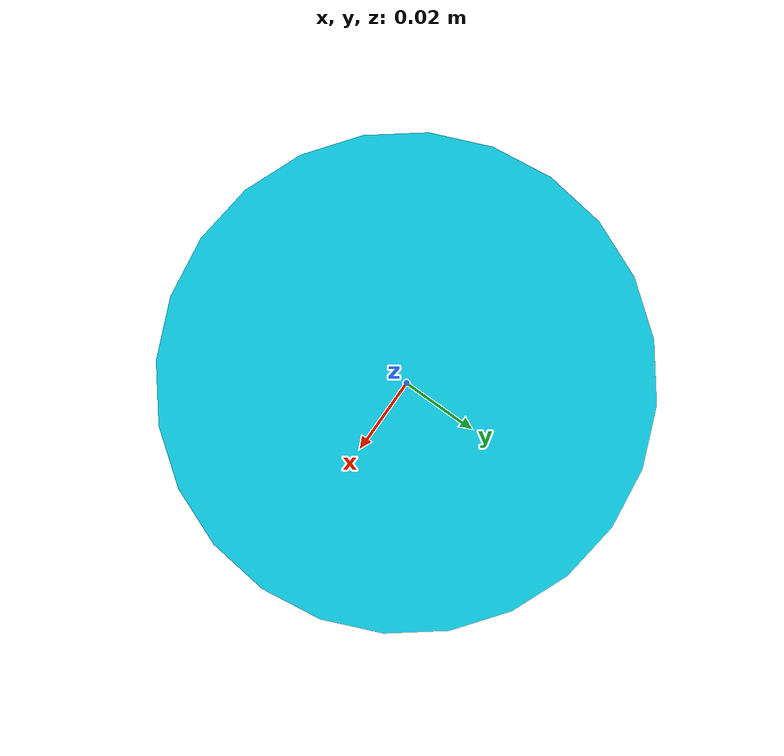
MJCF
<mujoco model="puck">
  <compiler angle="radian"/>

  <default>
    <default class="puck">
      <geom type="cylinder" condim="4" group="1" friction="0.8 0.02 0.01" mass="0.175"
        solimp="0.95 0.99 0.001" solref="0.01 1.0" gap="0.002"/>
    </default>
  </default>

  <asset>
    <material name="material" rgba="0.05 0.85 0.95 1"/>
  </asset>

  <worldbody>
    <body name="puck" pos="0 0 0.02">
      <freejoint name="joint"/>
      <geom name="geom" class="puck" size="0.060 0.02" material="material"/>
    </body>
  </worldbody>
</mujoco>
